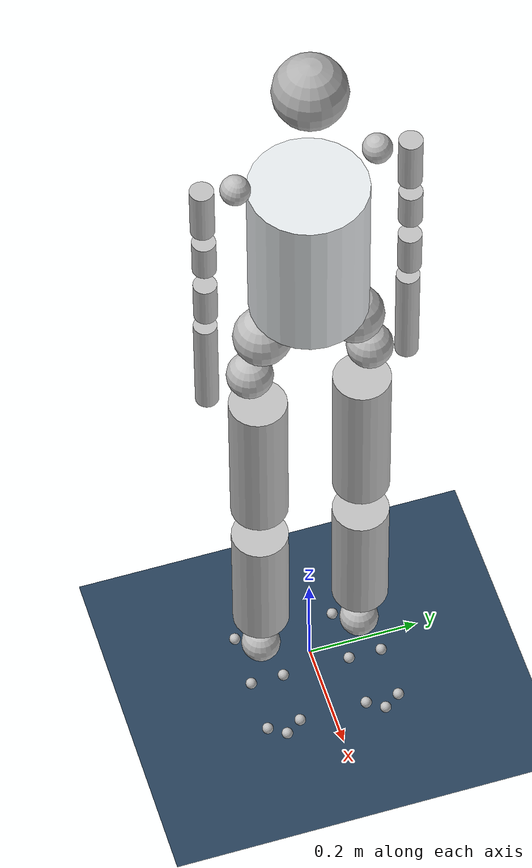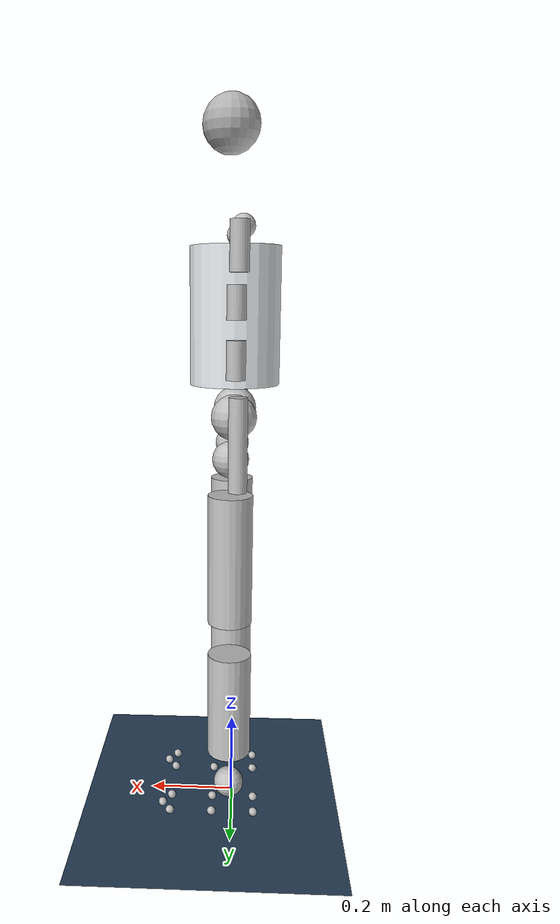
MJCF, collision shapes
<mujoco model="X1 scene">
  <include file="X1.xml"/>

  <statistic center="0 0 0.85" extent="1.4"/>

  <visual>
    <headlight diffuse="0.6 0.6 0.6" ambient="0.3 0.3 0.3" specular="0 0 0"/>
    <rgba haze="0.15 0.25 0.35 1"/>
  </visual>

  <asset>
    <texture type="skybox" builtin="gradient" rgb1="0.3 0.5 0.7" rgb2="0 0 0" width="512" height="3072"/>
    <texture type="2d" name="groundplane" builtin="checker" mark="edge" rgb1="0.2 0.3 0.4" rgb2="0.1 0.2 0.3"
      markrgb="0.8 0.8 0.8" width="300" height="300"/>
    <material name="groundplane" texture="groundplane" texuniform="true" texrepeat="5 5" reflectance="0.2"/>
  </asset>

  <worldbody>
    <light pos="0 0 1.5" dir="0 0 -1" directional="true"/>
    <geom name="floor" size="0 0 0.01" type="plane" material="groundplane"/>

  </worldbody>
</mujoco>

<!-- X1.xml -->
<mujoco model="X1">
  <compiler angle="radian" meshdir="../meshes/"/>

  <default>
    <joint damping="0.1" armature="0.01" frictionloss="0.2"/>
  </default>

  <asset>
    <mesh name="pelvis_link" file="pelvis_link.STL"/>
    <mesh name="left_hip_yaw_link" file="left_hip_yaw_link.STL"/>
    <mesh name="left_hip_roll_link" file="left_hip_roll_link.STL"/>
    <mesh name="left_hip_pitch_link" file="left_hip_pitch_link.STL"/>
    <mesh name="left_knee_link" file="left_knee_link.STL"/>
    <mesh name="left_ankle_pitch_link" file="left_ankle_pitch_link.STL"/>
    <mesh name="left_ankle_roll_link" file="left_ankle_roll_link.STL"/>
    <mesh name="right_hip_yaw_link" file="right_hip_yaw_link.STL"/>
    <mesh name="right_hip_roll_link" file="right_hip_roll_link.STL"/>
    <mesh name="right_hip_pitch_link" file="right_hip_pitch_link.STL"/>
    <mesh name="right_knee_link" file="right_knee_link.STL"/>
    <mesh name="right_ankle_pitch_link" file="right_ankle_pitch_link.STL"/>
    <mesh name="right_ankle_roll_link" file="right_ankle_roll_link.STL"/>
    <mesh name="waist_yaw_link" file="waist_yaw_link.STL"/>
    <mesh name="torso_link" file="torso_link.STL"/>
    <mesh name="head_link" file="head_link.STL"/>
    <mesh name="left_shoulder_pitch_link" file="left_shoulder_pitch_link.STL"/>
    <mesh name="left_shoulder_roll_link" file="left_shoulder_roll_link.STL"/>
    <mesh name="left_shoulder_yaw_link" file="left_shoulder_yaw_link.STL"/>
    <mesh name="left_elbow_link" file="left_elbow_link.STL"/>
    <mesh name="left_hand_roll_link" file="left_hand_roll_link.STL"/>
    <mesh name="right_shoulder_pitch_link" file="right_shoulder_pitch_link.STL"/>
    <mesh name="right_shoulder_roll_link" file="right_shoulder_roll_link.STL"/>
    <mesh name="right_shoulder_yaw_link" file="right_shoulder_yaw_link.STL"/>
    <mesh name="right_elbow_link" file="right_elbow_link.STL"/>
    <mesh name="right_hand_roll_link" file="right_hand_roll_link.STL"/>
  </asset>

  <worldbody>
    <body name="pelvis_link" pos="0 0 0.97">
      <freejoint name="root_freejoint"/>
      <inertial pos="0 0 0.015" mass="0.0094248" diaginertia="9e-7 9e-7 5e-7"/>
      <geom type="mesh" contype="0" conaffinity="0" group="1" density="0" rgba="1 1 1 1" mesh="pelvis_link"/>
      <body name="left_hip_yaw_link" pos="0 0 -0.083">
        <inertial pos="0.009751 0.0490233 0.0680802" quat="0.848113 0.517787 -0.061536 -0.0938835" mass="1.10645" diaginertia="0.00760544 0.00734977 0.00444119"/>
        <joint name="left_hip_yaw_joint" pos="0 0 0" axis="0 0 1" range="-0.518 0.518" actuatorfrcrange="-50 50"/>
        <geom type="mesh" contype="0" conaffinity="0" group="1" density="0" rgba="0.749024 0.749024 0.749024 1" mesh="left_hip_yaw_link"/>
        <geom size="0.05" pos="0 0.08 0.08" rgba="0.749024 0.749024 0.749024 1"/>
        <body name="left_hip_roll_link" pos="0.006 0.1175 0.0315">
          <inertial pos="-0.0209872 -0.0039306 -0.0711852" quat="0.480997 0.136646 0.0884743 0.861477" mass="4.23533" diaginertia="0.0221221 0.018469 0.010379"/>
          <joint name="left_hip_roll_joint" pos="0 0 0" axis="1 0 0" range="-0.175 0.96" actuatorfrcrange="-100 100"/>
          <geom type="mesh" contype="0" conaffinity="0" group="1" density="0" rgba="0.749024 0.749024 0.749024 1" mesh="left_hip_roll_link"/>
          <geom size="0.04" pos="0 -0.013 -0.04" rgba="0.749024 0.749024 0.749024 1"/>
          <body name="left_hip_pitch_link" pos="0 -0.026 -0.123">
            <inertial pos="-0.0004112 0.0256716 -0.119111" quat="0.999778 -0.0198073 -0.00307935 -0.00642459" mass="2.26957" diaginertia="0.0151598 0.0144456 0.00296362"/>
            <joint name="left_hip_pitch_joint" pos="0 0 0" axis="0 -1 0" range="-0.524 1.047" actuatorfrcrange="-212 212"/>
            <geom type="mesh" contype="0" conaffinity="0" group="1" density="0" rgba="0.749024 0.749024 0.749024 1" mesh="left_hip_pitch_link"/>
            <geom size="0.05 0.15" pos="0 0 -0.15" type="cylinder" rgba="0.749024 0.749024 0.749024 1"/>
            <body name="left_knee_link" pos="0 0 -0.324779">
              <inertial pos="0.0022143 8.6e-06 -0.110448" quat="0.707109 0.00580526 0.00585949 0.707057" mass="1.08818" diaginertia="0.0136571 0.0134351 0.000514984"/>
              <joint name="left_knee_joint" pos="0 0 0" axis="0 -1 0" range="-1.745 0.087" actuatorfrcrange="-93 93"/>
              <geom type="mesh" contype="0" conaffinity="0" group="1" density="0" rgba="0.749024 0.749024 0.749024 1" mesh="left_knee_link"/>
              <geom size="0.05 0.125" pos="0 0 -0.18" type="cylinder" rgba="0.749024 0.749024 0.749024 1"/>
              <body name="left_ankle_pitch_link" pos="0 0 -0.3595">
                <inertial pos="0.00270709 -0.00199973 -0.0216465" quat="0.701063 -0.0922568 -0.0922568 0.701063" mass="0.34756" diaginertia="0.00036491 0.00029392 0.00016663"/>
                <joint name="left_ankle_pitch_joint" pos="0 0 0" axis="0 -1 0" range="-1.082 1.082" actuatorfrcrange="-64.8 64.8"/>
                <geom type="mesh" contype="0" conaffinity="0" group="1" density="0" rgba="0.749024 0.749024 0.749024 1" mesh="left_ankle_pitch_link"/>
                <geom size="0.035" pos="0 -0.001 -0.03" rgba="0.749024 0.749024 0.749024 1"/>
                <body name="left_ankle_roll_link" pos="0 -0.002 -0.059">
                  <inertial pos="0.0505158 3.36e-05 -0.013625" quat="0.000452713 0.691422 -3.76194e-05 0.722451" mass="1.29544" diaginertia="0.00543875 0.0051377 0.00115385"/>
                  <joint name="left_ankle_roll_joint" pos="0 0 0" axis="1 0 0" range="-0.664 0.664" actuatorfrcrange="-20 20"/>
                  <geom type="mesh" contype="0" conaffinity="0" group="1" density="0" rgba="0.749024 0.749024 0.749024 1" mesh="left_ankle_roll_link"/>
                  <geom size="0.01" pos="-0.06 0.03 -0.033" quat="0.707107 0 -0.707107 0" rgba="0.749024 0.749024 0.749024 1"/>
                  <geom size="0.01" pos="-0.06 -0.03 -0.033" quat="0.707107 0 -0.707107 0" rgba="0.749024 0.749024 0.749024 1"/>
                  <geom size="0.01" pos="0.04 0.03 -0.033" quat="0.707107 0 -0.707107 0" rgba="0.749024 0.749024 0.749024 1"/>
                  <geom size="0.01" pos="0.14 0.03 -0.033" quat="0.707107 0 -0.707107 0" rgba="0.749024 0.749024 0.749024 1"/>
                  <geom size="0.01" pos="0.04 -0.03 -0.033" quat="0.707107 0 -0.707107 0" rgba="0.749024 0.749024 0.749024 1"/>
                  <geom size="0.01" pos="0.14 -0.03 -0.033" quat="0.707107 0 -0.707107 0" rgba="0.749024 0.749024 0.749024 1"/>
                  <geom size="0.01" pos="0.16 0 -0.033" quat="0.707107 0 -0.707107 0" rgba="0.749024 0.749024 0.749024 1"/>
                </body>
              </body>
            </body>
          </body>
        </body>
      </body>
      <body name="right_hip_yaw_link" pos="0 0 -0.083">
        <inertial pos="0.0082698 -0.0088217 0.0494496" quat="0.487402 0.496926 -0.545381 0.466972" mass="1.7678" diaginertia="0.00877216 0.0076623 0.00315254"/>
        <joint name="right_hip_yaw_joint" pos="0 0 0" axis="0 0 -1" range="-0.785 0.785" actuatorfrcrange="-50 50"/>
        <geom type="mesh" contype="0" conaffinity="0" group="1" density="0" rgba="0.749024 0.749024 0.749024 1" mesh="right_hip_yaw_link"/>
        <geom size="0.05" pos="0 -0.08 0.08" rgba="0.749024 0.749024 0.749024 1"/>
        <body name="right_hip_roll_link" pos="0.006 -0.1175 0.0315">
          <inertial pos="-0.0210196 0.0039656 -0.0718356" quat="0.858977 0.0994654 0.132096 0.484578" mass="4.23853" diaginertia="0.0220934 0.0185719 0.010363"/>
          <joint name="right_hip_roll_joint" pos="0 0 0" axis="-1 0 0" range="-0.175 0.96" actuatorfrcrange="-100 100"/>
          <geom type="mesh" contype="0" conaffinity="0" group="1" density="0" rgba="0.749024 0.749024 0.749024 1" mesh="right_hip_roll_link"/>
          <geom size="0.04" pos="0 0.013 -0.04" rgba="0.749024 0.749024 0.749024 1"/>
          <body name="right_hip_pitch_link" pos="0 0.026 -0.123">
            <inertial pos="-0.0004112 -0.0256716 -0.119111" quat="0.999771 0.0197765 -0.00293902 0.00768573" mass="2.26957" diaginertia="0.0151558 0.0144455 0.00296773"/>
            <joint name="right_hip_pitch_joint" pos="0 0 0" axis="0 -1 0" range="-0.524 1.047" actuatorfrcrange="-212 212"/>
            <geom type="mesh" contype="0" conaffinity="0" group="1" density="0" rgba="0.749024 0.749024 0.749024 1" mesh="right_hip_pitch_link"/>
            <geom size="0.05 0.15" pos="0 0 -0.15" type="cylinder" rgba="0.749024 0.749024 0.749024 1"/>
            <body name="right_knee_link" pos="0 0 -0.324779">
              <inertial pos="0.0022143 8.6e-06 -0.110448" quat="0.707109 0.00580526 0.00585949 0.707057" mass="1.08818" diaginertia="0.0136571 0.0134351 0.000514984"/>
              <joint name="right_knee_joint" pos="0 0 0" axis="0 -1 0" range="-1.745 0.087" actuatorfrcrange="-93 93"/>
              <geom type="mesh" contype="0" conaffinity="0" group="1" density="0" rgba="0.749024 0.749024 0.749024 1" mesh="right_knee_link"/>
              <geom size="0.05 0.125" pos="0 0 -0.18" type="cylinder" rgba="0.749024 0.749024 0.749024 1"/>
              <body name="right_ankle_pitch_link" pos="0 0 -0.3595">
                <inertial pos="0.00270708 -0.00200027 -0.0216465" quat="0.701063 -0.0922568 -0.0922568 0.701063" mass="0.34756" diaginertia="0.00036491 0.00029392 0.00016663"/>
                <joint name="right_ankle_pitch_joint" pos="0 0 0" axis="0 -1 0" range="-1.082 1.082" actuatorfrcrange="-64.8 64.8"/>
                <geom type="mesh" contype="0" conaffinity="0" group="1" density="0" rgba="0.749024 0.749024 0.749024 1" mesh="right_ankle_pitch_link"/>
                <geom size="0.035" pos="0 -0.001 -0.03" rgba="0.749024 0.749024 0.749024 1"/>
                <body name="right_ankle_roll_link" pos="0 -0.002 -0.059">
                  <inertial pos="0.0505149 3.36e-05 -0.0136249" quat="0.000452713 0.691422 -3.76194e-05 0.722451" mass="1.29544" diaginertia="0.00543875 0.0051377 0.00115385"/>
                  <joint name="right_ankle_roll_joint" pos="0 0 0" axis="-1 0 0" range="-0.664 0.664" actuatorfrcrange="-20 20"/>
                  <geom type="mesh" contype="0" conaffinity="0" group="1" density="0" rgba="0.749024 0.749024 0.749024 1" mesh="right_ankle_roll_link"/>
                  <geom size="0.01" pos="-0.06 0.03 -0.033" quat="0.707107 0 -0.707107 0" rgba="0.749024 0.749024 0.749024 1"/>
                  <geom size="0.01" pos="-0.06 -0.03 -0.033" quat="0.707107 0 -0.707107 0" rgba="0.749024 0.749024 0.749024 1"/>
                  <geom size="0.01" pos="0.04 0.03 -0.033" quat="0.707107 0 -0.707107 0" rgba="0.749024 0.749024 0.749024 1"/>
                  <geom size="0.01" pos="0.14 0.03 -0.033" quat="0.707107 0 -0.707107 0" rgba="0.749024 0.749024 0.749024 1"/>
                  <geom size="0.01" pos="0.04 -0.03 -0.033" quat="0.707107 0 -0.707107 0" rgba="0.749024 0.749024 0.749024 1"/>
                  <geom size="0.01" pos="0.14 -0.03 -0.033" quat="0.707107 0 -0.707107 0" rgba="0.749024 0.749024 0.749024 1"/>
                  <geom size="0.01" pos="0.16 0 -0.033" quat="0.707107 0 -0.707107 0" rgba="0.749024 0.749024 0.749024 1"/>
                </body>
              </body>
            </body>
          </body>
        </body>
      </body>
      <body name="waist_yaw_link">
        <inertial pos="0.000215218 -0.000234521 0.292283" quat="0.726141 0.000910957 -0.687545 0.000758991" mass="10.89681" diaginertia="0.0443203 0.487883 0.504607"/>
        <geom type="mesh" contype="0" conaffinity="0" group="1" density="0" rgba="0.749024 0.749024 0.749024 1" mesh="waist_yaw_link"/>
        <geom pos="0.0003004 0 0.071" type="mesh" contype="0" conaffinity="0" group="1" density="0" rgba="0.898043 0.913729 0.925494 1" mesh="torso_link"/>
        <geom size="0.1 0.15" pos="0.0003004 0 0.211" type="cylinder" rgba="0.898043 0.913729 0.925494 1"/>
        <geom pos="-0.0099 0 0.4185" quat="1 0 0 0" type="mesh" contype="0" conaffinity="0" group="1" density="0" rgba="0.694122 0.694122 0.694122 1" mesh="head_link"/>
        <geom size="0.0621" pos="0.0106728 0 0.607532" rgba="0.694122 0.694122 0.694122 1"/>
        <body name="left_shoulder_pitch_link" pos="-0.0098996 0.11097 0.3903" quat="0.996637 0.0819385 0 0">
          <inertial pos="-0.0140494 0.0332971 -0.0033726" quat="0.31875 0.63342 0.309396 0.633603" mass="0.107972" diaginertia="0.000133777 0.000124027 0.000102196"/>
          <geom type="mesh" contype="0" conaffinity="0" group="1" density="0" rgba="0.749024 0.749024 0.749024 1" mesh="left_shoulder_pitch_link"/>
          <geom size="0.025" pos="-0.007 0.01 0" rgba="0.749024 0.749024 0.749024 1"/>
          <body name="left_shoulder_roll_link" pos="0 0.06445 0" quat="0.996637 -0.0819385 0 0">
            <inertial pos="0.000129 0.0002548 -0.043097" quat="0.707494 0.00354926 -0.00137884 0.706709" mass="0.919844" diaginertia="0.00169376 0.00162811 0.000388325"/>
            <geom type="mesh" contype="0" conaffinity="0" group="1" density="0" rgba="0.749024 0.749024 0.749024 1" mesh="left_shoulder_roll_link"/>
            <geom size="0.02 0.05" pos="0 0 -0.05" type="cylinder" rgba="0.749024 0.749024 0.749024 1"/>
            <body name="left_shoulder_yaw_link" pos="0.0001 0 -0.11859">
              <inertial pos="0.005582 0.0001858 -0.086314" quat="0.997541 0.0022569 -0.0700257 -0.00189417" mass="0.533994" diaginertia="0.000766494 0.000707007 0.000269899"/>
              <geom type="mesh" contype="0" conaffinity="0" group="1" density="0" rgba="0.749024 0.749024 0.749024 1" mesh="left_shoulder_yaw_link"/>
              <geom size="0.02 0.035" pos="0.005 0 -0.04" type="cylinder" rgba="0.749024 0.749024 0.749024 1"/>
              <body name="left_elbow_link" pos="0.0105 0 -0.10494" quat="0.707107 0 0.707107 0">
                <inertial pos="0.0530258 7.4e-06 -0.0107229" quat="-0.000126779 0.691931 0.000199172 0.721963" mass="0.380795" diaginertia="0.000443772 0.0003979 0.000182128"/>
                <geom type="mesh" contype="0" conaffinity="0" group="1" density="0" rgba="0.749024 0.749024 0.749024 1" mesh="left_elbow_link"/>
                <geom size="0.02 0.04" pos="0.05 0 -0.005" quat="0.707107 0 -0.707107 0" type="cylinder" rgba="0.749024 0.749024 0.749024 1"/>
                <body name="left_hand_roll_link" pos="0.105 0 -0.0105">
                  <inertial pos="0.099408 -0.0009679 0.0023607" quat="0.517927 0.480598 0.501924 0.498848" mass="0.436004" diaginertia="0.00402199 0.00392713 0.000266487"/>
                  <geom type="mesh" contype="0" conaffinity="0" group="1" density="0" rgba="0.749024 0.749024 0.749024 1" mesh="left_hand_roll_link"/>
                  <geom size="0.02 0.1" pos="0.12 0 0" quat="0.5 -0.5 0.5 -0.5" type="cylinder" rgba="0.749024 0.749024 0.749024 1"/>
                </body>
              </body>
            </body>
          </body>
        </body>
        <body name="right_shoulder_pitch_link" pos="-0.0098996 -0.11097 0.3903" quat="0.996637 -0.0819385 0 0">
          <inertial pos="0.01413 -0.0357773 -0.0037841" quat="0.633603 0.309396 0.63342 0.31875" mass="0.107971" diaginertia="0.000133777 0.000124027 0.000102196"/>
          <geom type="mesh" contype="0" conaffinity="0" group="1" density="0" rgba="0.749024 0.749024 0.749024 1" mesh="right_shoulder_pitch_link"/>
          <geom size="0.025" pos="0.007 -0.01 0" rgba="0.749024 0.749024 0.749024 1"/>
          <body name="right_shoulder_roll_link" pos="0 -0.06445 0" quat="0.996637 0.0819385 0 0">
            <inertial pos="-0.0002042 -0.0002547 -0.0430969" quat="0.707618 -0.00263743 0.00229126 0.706587" mass="0.919842" diaginertia="0.00169376 0.0016281 0.000388236"/>
            <geom type="mesh" contype="0" conaffinity="0" group="1" density="0" rgba="0.749024 0.749024 0.749024 1" mesh="right_shoulder_roll_link"/>
            <geom size="0.02 0.05" pos="0 0 -0.05" type="cylinder" rgba="0.749024 0.749024 0.749024 1"/>
            <body name="right_shoulder_yaw_link" pos="-0.0002 0 -0.11859">
              <inertial pos="0.005582 0.0001858 -0.086314" quat="0.997541 0.0022569 -0.0700257 -0.00189417" mass="0.533994" diaginertia="0.000766494 0.000707007 0.000269899"/>
              <geom type="mesh" contype="0" conaffinity="0" group="1" density="0" rgba="0.749024 0.749024 0.749024 1" mesh="right_shoulder_yaw_link"/>
              <geom size="0.02 0.035" pos="0.005 0 -0.04" type="cylinder" rgba="0.749024 0.749024 0.749024 1"/>
              <body name="right_elbow_link" pos="0.0105 0 -0.10494" quat="0.707107 0 0.707107 0">
                <inertial pos="0.0530338 7.4e-06 -0.0107229" quat="-0.000126618 0.691776 0.00019974 0.722112" mass="0.380795" diaginertia="0.000443481 0.0003976 0.000182119"/>
                <geom type="mesh" contype="0" conaffinity="0" group="1" density="0" rgba="0.749024 0.749024 0.749024 1" mesh="right_elbow_link"/>
                <geom size="0.02 0.04" pos="0.05 0 -0.005" quat="0.707107 0 -0.707107 0" type="cylinder" rgba="0.749024 0.749024 0.749024 1"/>
                <body name="right_hand_roll_link" pos="0.105 0 -0.0105">
                  <inertial pos="0.099408 -0.0009679 0.0023607" quat="0.517927 0.480598 0.501924 0.498848" mass="0.436004" diaginertia="0.00402199 0.00392713 0.000266487"/>
                  <geom type="mesh" contype="0" conaffinity="0" group="1" density="0" rgba="0.749024 0.749024 0.749024 1" mesh="right_hand_roll_link"/>
                  <geom size="0.02 0.1" pos="0.12 0 0" quat="0.5 0.5 0.5 0.5" type="cylinder" rgba="0.749024 0.749024 0.749024 1"/>
                </body>
              </body>
            </body>
          </body>
        </body>
      </body>
    </body>
  </worldbody>

  <actuator>
    <motor name="left_hip_yaw_motor" joint="left_hip_yaw_joint" gear="1" ctrllimited="true" ctrlrange="-50 50" forcelimited="true" forcerange="-50 50"/>
    <motor name="left_hip_roll_motor" joint="left_hip_roll_joint" gear="1" ctrllimited="true" ctrlrange="-100 100" forcelimited="true" forcerange="-100 100"/>
    <motor name="left_hip_pitch_motor" joint="left_hip_pitch_joint" gear="1" ctrllimited="true" ctrlrange="-212 212" forcelimited="true" forcerange="-212 212"/>
    <motor name="left_knee_motor" joint="left_knee_joint" gear="1" ctrllimited="true" ctrlrange="-93 93" forcelimited="true" forcerange="-93 93"/>
    <motor name="left_ankle_pitch_motor" joint="left_ankle_pitch_joint" gear="1" ctrllimited="true" ctrlrange="-64.8 64.8" forcelimited="true" forcerange="-64.8 64.8"/>
    <motor name="left_ankle_roll_motor" joint="left_ankle_roll_joint" gear="1" ctrllimited="true" ctrlrange="-20 20" forcelimited="true" forcerange="-20 20"/>
    <motor name="right_hip_yaw_motor" joint="right_hip_yaw_joint" gear="1" ctrllimited="true" ctrlrange="-50 50" forcelimited="true" forcerange="-50 50"/>
    <motor name="right_hip_roll_motor" joint="right_hip_roll_joint" gear="1" ctrllimited="true" ctrlrange="-100 100" forcelimited="true" forcerange="-100 100"/>
    <motor name="right_hip_pitch_motor" joint="right_hip_pitch_joint" gear="1" ctrllimited="true" ctrlrange="-212 212" forcelimited="true" forcerange="-212 212"/>
    <motor name="right_knee_motor" joint="right_knee_joint" gear="1" ctrllimited="true" ctrlrange="-93 93" forcelimited="true" forcerange="-93 93"/>
    <motor name="right_ankle_pitch_motor" joint="right_ankle_pitch_joint" gear="1" ctrllimited="true" ctrlrange="-64.8 64.8" forcelimited="true" forcerange="-64.8 64.8"/>
    <motor name="right_ankle_roll_motor" joint="right_ankle_roll_joint" gear="1" ctrllimited="true" ctrlrange="-20 20" forcelimited="true" forcerange="-20 20"/>
  </actuator>
</mujoco>
